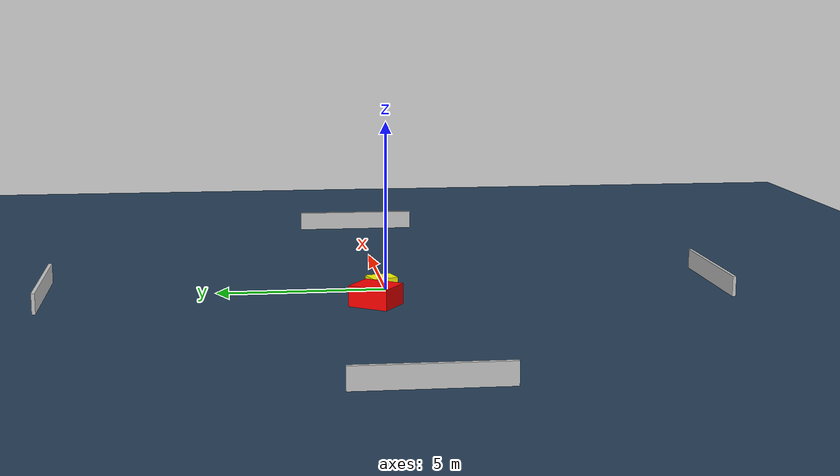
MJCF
<?xml version="1.0" ?>
<mujoco model="generated_environment">
  <option timestep="0.01" integrator="RK4" cone="elliptic"/>
  <default>
    <geom density="1"/>
  </default>
  <asset>
    <texture builtin="gradient" height="3072" name="skybox" rgb1="0.3 0.5 0.7" rgb2="0 0 0" type="skybox" width="512"/>
    <texture builtin="checker" height="300" name="groundplane" rgb1="0.2 0.3 0.4" rgb2="0.1 0.2 0.3" type="2d" width="300"/>
    <material name="groundplane" reflectance="0.2" texrepeat="5 5" texture="groundplane"/>
  </asset>
  <worldbody>
    <light dir="0 0 -1" directional="true" pos="0 0 1.5"/>
    <geom condim="3" friction="0.5 0.005 0.001" material="groundplane" name="floor" pos="0 0 0" size="0 0 0.05" type="plane"/>
    <body name="walls">
      <geom name="wall_1" condim="4" pos="-10.0 0.0 0.3" rgba="0.800000011920929 0.800000011920929 0.800000011920929 1.0" size="0.05 2.0 0.3" type="box"/>
      <geom name="wall_2" condim="4" pos="10.0 0.0 0.3" rgba="0.800000011920929 0.800000011920929 0.800000011920929 1.0" size="0.05 2.0 0.3" type="box"/>
      <geom name="wall_3" condim="4" pos="0.0 -10.0 0.3" rgba="0.800000011920929 0.800000011920929 0.800000011920929 1.0" size="2.0 0.05 0.3" type="box"/>
      <geom name="wall_4" condim="4" pos="0.0 10.0 0.3" rgba="0.800000011920929 0.800000011920929 0.800000011920929 1.0" size="2.0 0.05 0.3" type="box"/>
    </body>
    <body name="robot">
      <joint name="joint_x" type="slide" pos="0 0 0" axis="1 0 0"/>
      <joint name="joint_y" type="slide" pos="0 0 0" axis="0 1 0"/>
      <geom name="robot" type="cylinder" pos="0.0 0.0 0.2" size="0.2 0.2 0.0" mass="5.0" friction="1.0 0.005 0.0001" condim="4" rgba="1.0 1.0 0.0 1.0"/>
    </body>
    <body name="obstacle_1_movable">
      <geom name="obstacle_1_movable" condim="4" pos="-0.8620762669101361 0.20629566878267408 0.3" euler="0 0 287.34660647564266" friction="0.0 0.005 0.001" rgba="1.0 1.0 0.0 1.0" size="0.3866256764937571 0.3106750590657785 0.3" type="box" mass="0.1"/>
      <joint type="free"/>
    </body>
    <body name="obstacle_2_static">
      <geom name="obstacle_2_static" condim="4" pos="-1.9108145281737983 0.47871107153484194 0.3" euler="0 0 235.9303511577457" friction="0.0 0.005 0.001" rgba="1.0 0.0 0.0 1.0" size="0.6069082992526303 0.5172262023489901 0.3" type="box"/>
    </body>
  </worldbody>
  <actuator>
    <motor name="actuator_x" joint="joint_x" gear="1" ctrlrange="-1 1"/>
    <motor name="actuator_y" joint="joint_y" gear="1" ctrlrange="-1 1"/>
  </actuator>
</mujoco>
